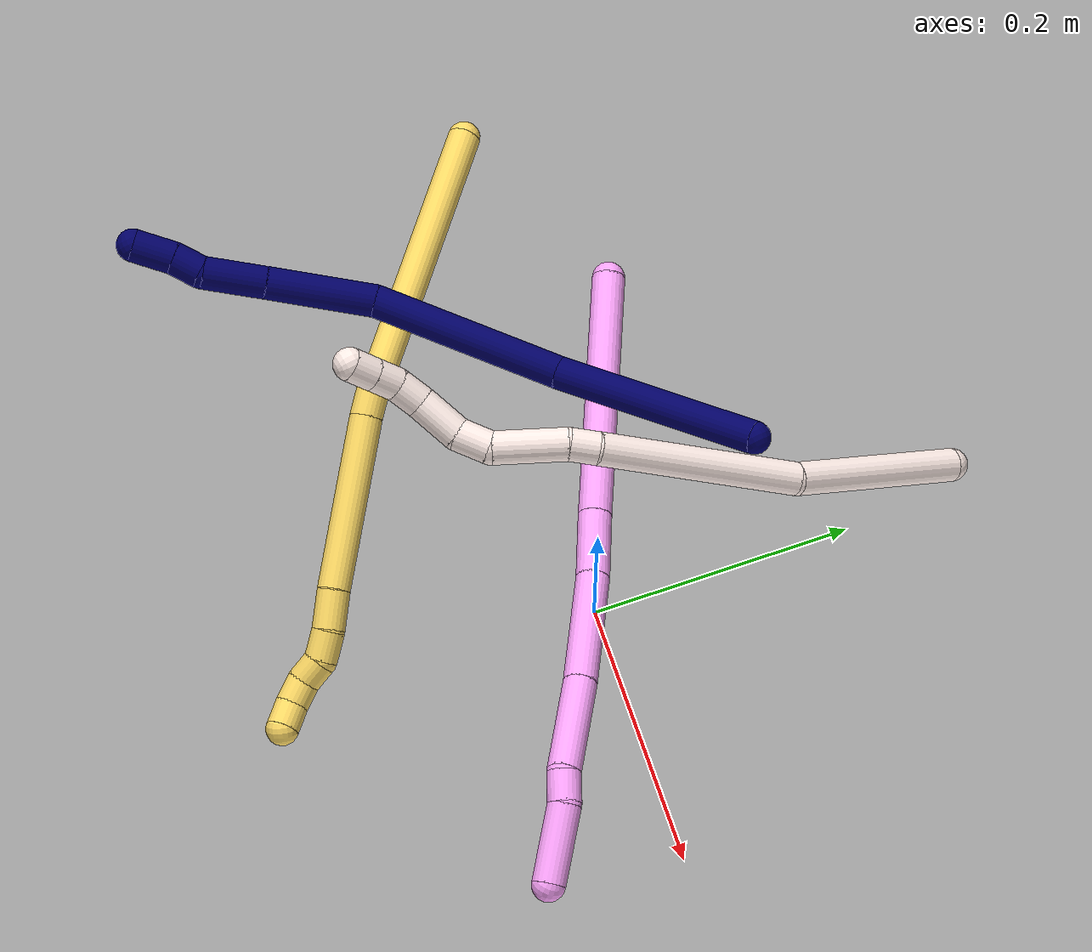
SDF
<sdf version="1.7">
 <world name="default">
  <model name="photoneo_s_sensor">
   <static>1</static>
   <pose>0 0 2 1.57079 1.57079 3.14159</pose>
   <link name="link">
    <inertial><mass>0.1</mass></inertial>
    <sensor name="sensor" type="depth">
     <update_rate>30</update_rate>
     <camera>
      <horizontal_fov>1.22</horizontal_fov>
      <image><width>1920</width><height>1200</height><format>B8G8R8</format></image>
      <clip><near>0.1</near><far>4</far></clip>
      <depth_camera><output>points</output></depth_camera>
     </camera>
     <plugin name="camera_plugin" filename="libgazebo_ros_depth_camera.so">
      <baseline>0.2</baseline>
      <alwaysOn>1</alwaysOn>
      <updateRate>0.0</updateRate>
      <cameraName>camera_ir</cameraName>
      <imageTopicName>/camera/color/image_raw</imageTopicName>
      <cameraInfoTopicName>/camera/color/camera_info</cameraInfoTopicName>
      <depthImageTopicName>/camera/depth/image_raw</depthImageTopicName>
      <depthImageCameraInfoTopicName>/camera/depth/camera_info</depthImageCameraInfoTopicName>
      <pointCloudTopicName>/camera/depth/points</pointCloudTopicName>
      <frameName>fr_optical</frameName>
      <pointCloudCutoff>0.1</pointCloudCutoff>
      <pointCloudCutoffMax>2.0</pointCloudCutoffMax>
      <distortionK1>0</distortionK1>
      <distortionK2>0</distortionK2>
      <distortionK3>0</distortionK3>
      <distortionT1>0</distortionT1>
      <distortionT2>0</distortionT2>
      <CxPrime>0</CxPrime>
      <Cx>0</Cx>
      <Cy>0</Cy>
      <focalLength>0</focalLength>
      <hackBaseline>0</hackBaseline>
     </plugin>
    </sensor>
   </link>
  </model>
  <model name="bin">
   <static>1</static>
   <link name="bottom">
    <collision name="collision-bottom">
     <pose>0 0 -0.01 0 -0 0</pose>
     <geometry><box><size>0.8 0.6 0.02</size></box></geometry>
     <surface>
      <friction><ode><mu>100</mu><mu2>100</mu2></ode></friction>
      <contact><collide_bitmask>65535</collide_bitmask></contact>
     </surface>
    </collision>
   </link>
   <link name="west_wall">
    <collision name="collision-west_wall">
     <pose>-0.41 0 0.1 0 -0 0</pose>
     <geometry><box><size>0.02 0.6 0.2</size></box></geometry>
     <surface>
      <friction><ode><mu>100</mu><mu2>100</mu2></ode></friction>
      <contact><collide_bitmask>65535</collide_bitmask></contact>
     </surface>
    </collision>
   </link>
   <link name="east_wall">
    <collision name="collision-east_wall">
     <pose>0.41 0 0.1 0 -0 0</pose>
     <geometry><box><size>0.02 0.6 0.2</size></box></geometry>
     <surface>
      <friction><ode><mu>100</mu><mu2>100</mu2></ode></friction>
      <contact><collide_bitmask>65535</collide_bitmask></contact>
     </surface>
    </collision>
   </link>
   <link name="south_wall">
    <collision name="collision-south_wall">
     <pose>0 -0.31 0.1 0 -0 0</pose>
     <geometry><box><size>0.8 0.02 0.2</size></box></geometry>
     <surface>
      <friction><ode><mu>100</mu><mu2>100</mu2></ode></friction>
      <contact><collide_bitmask>65535</collide_bitmask></contact>
     </surface>
    </collision>
   </link>
   <link name="north_wall">
    <collision name="collision-north_wall">
     <pose>0 0.31 0.1 0 -0 0</pose>
     <geometry><box><size>0.8 0.02 0.2</size></box></geometry>
     <surface>
      <friction><ode><mu>100</mu><mu2>100</mu2></ode></friction>
      <contact><collide_bitmask>65535</collide_bitmask></contact>
     </surface>
    </collision>
   </link>
  </model>
  <model name="4">
   <static>0</static>
   <link name="4">
    <collision name="collision-cylinder-e_1_1_4">
     <pose>0.085978 -0.012436 -0.051878 2.90631 1.01545 2.72297</pose>
     <geometry><cylinder><radius>0.0125</radius><length>0.202369</length></cylinder></geometry>
     <surface>
      <friction><ode><mu>1.16</mu><mu2>1.16</mu2><slip1>0</slip1><slip2>0</slip2></ode></friction>
      <contact><ode><kp>1e+06</kp><kd>1</kd><max_vel>0</max_vel><min_depth>0.001</min_depth></ode></contact>
     </surface>
    </collision>
    <visual name="visual-cylinder-e_1_1_4">
     <pose>0.085978 -0.012436 -0.051878 2.90631 1.01545 2.72297</pose>
     <geometry><cylinder><radius>0.0125</radius><length>0.202369</length></cylinder></geometry>
     <material><ambient>1 0.65098 0.996078 1</ambient></material>
    </visual>
    <collision name="collision-cylinder-e_2_4_5">
     <pose>0.194665 -0.027953 -0.116326 2.9013 1.05279 2.73189</pose>
     <geometry><cylinder><radius>0.0125</radius><length>0.052274</length></cylinder></geometry>
     <surface>
      <friction><ode><mu>1.16</mu><mu2>1.16</mu2><slip1>0</slip1><slip2>0</slip2></ode></friction>
      <contact><ode><kp>1e+06</kp><kd>1</kd><max_vel>0</max_vel><min_depth>0.001</min_depth></ode></contact>
     </surface>
    </collision>
    <visual name="visual-cylinder-e_2_4_5">
     <pose>0.194665 -0.027953 -0.116326 2.9013 1.05279 2.73189</pose>
     <geometry><cylinder><radius>0.0125</radius><length>0.052274</length></cylinder></geometry>
     <material><ambient>1 0.65098 0.996078 1</ambient></material>
    </visual>
    <collision name="collision-cylinder-e_3_5_6">
     <pose>0.255669 -0.040181 -0.149339 2.72081 1.0416 2.42883</pose>
     <geometry><cylinder><radius>0.0125</radius><length>0.088729</length></cylinder></geometry>
     <surface>
      <friction><ode><mu>1.16</mu><mu2>1.16</mu2><slip1>0</slip1><slip2>0</slip2></ode></friction>
      <contact><ode><kp>1e+06</kp><kd>1</kd><max_vel>0</max_vel><min_depth>0.001</min_depth></ode></contact>
     </surface>
    </collision>
    <visual name="visual-cylinder-e_3_5_6">
     <pose>0.255669 -0.040181 -0.149339 2.72081 1.0416 2.42883</pose>
     <geometry><cylinder><radius>0.0125</radius><length>0.088729</length></cylinder></geometry>
     <material><ambient>1 0.65098 0.996078 1</ambient></material>
    </visual>
    <collision name="collision-cylinder-e_4_6_7">
     <pose>0.325283 -0.058707 -0.187419 2.65293 1.00304 2.28805</pose>
     <geometry><cylinder><radius>0.0125</radius><length>0.074291</length></cylinder></geometry>
     <surface>
      <friction><ode><mu>1.16</mu><mu2>1.16</mu2><slip1>0</slip1><slip2>0</slip2></ode></friction>
      <contact><ode><kp>1e+06</kp><kd>1</kd><max_vel>0</max_vel><min_depth>0.001</min_depth></ode></contact>
     </surface>
    </collision>
    <visual name="visual-cylinder-e_4_6_7">
     <pose>0.325283 -0.058707 -0.187419 2.65293 1.00304 2.28805</pose>
     <geometry><cylinder><radius>0.0125</radius><length>0.074291</length></cylinder></geometry>
     <material><ambient>1 0.65098 0.996078 1</ambient></material>
    </visual>
    <collision name="collision-cylinder-e_5_7_8">
     <pose>0.366105 -0.06796 -0.212197 -3.12431 0.926381 -3.107</pose>
     <geometry><cylinder><radius>0.0125</radius><length>0.023778</length></cylinder></geometry>
     <surface>
      <friction><ode><mu>1.16</mu><mu2>1.16</mu2><slip1>0</slip1><slip2>0</slip2></ode></friction>
      <contact><ode><kp>1e+06</kp><kd>1</kd><max_vel>0</max_vel><min_depth>0.001</min_depth></ode></contact>
     </surface>
    </collision>
    <visual name="visual-cylinder-e_5_7_8">
     <pose>0.366105 -0.06796 -0.212197 -3.12431 0.926381 -3.107</pose>
     <geometry><cylinder><radius>0.0125</radius><length>0.023778</length></cylinder></geometry>
     <material><ambient>1 0.65098 0.996078 1</ambient></material>
    </visual>
    <collision name="collision-cylinder-e_6_8_2">
     <pose>0.394512 -0.071302 -0.241429 2.98598 0.701774 2.72187</pose>
     <geometry><cylinder><radius>0.0125</radius><length>0.058559</length></cylinder></geometry>
     <surface>
      <friction><ode><mu>1.16</mu><mu2>1.16</mu2><slip1>0</slip1><slip2>0</slip2></ode></friction>
      <contact><ode><kp>1e+06</kp><kd>1</kd><max_vel>0</max_vel><min_depth>0.001</min_depth></ode></contact>
     </surface>
    </collision>
    <visual name="visual-cylinder-e_6_8_2">
     <pose>0.394512 -0.071302 -0.241429 2.98598 0.701774 2.72187</pose>
     <geometry><cylinder><radius>0.0125</radius><length>0.058559</length></cylinder></geometry>
     <material><ambient>1 0.65098 0.996078 1</ambient></material>
    </visual>
    <collision name="collision-sphere-2">
     <pose>0.413414 -0.074768 -0.26352 0 -0 0</pose>
     <geometry><sphere><radius>0.0125</radius></sphere></geometry>
     <surface>
      <friction><ode><mu>1.16</mu><mu2>1.16</mu2><slip1>0</slip1><slip2>0</slip2></ode></friction>
      <contact><ode><kp>1e+06</kp><kd>1</kd><max_vel>0</max_vel><min_depth>0.001</min_depth></ode></contact>
     </surface>
    </collision>
    <visual name="visual-sphere-2">
     <pose>0.413414 -0.074768 -0.26352 0 -0 0</pose>
     <geometry><sphere><radius>0.0125</radius></sphere></geometry>
     <material><ambient>1 0.65098 0.996078 1</ambient></material>
    </visual>
    <collision name="collision-sphere-4">
     <pose>0.171957 -0.024873 -0.103757 0 -0 0</pose>
     <geometry><sphere><radius>0.0125</radius></sphere></geometry>
     <surface>
      <friction><ode><mu>1.16</mu><mu2>1.16</mu2><slip1>0</slip1><slip2>0</slip2></ode></friction>
      <contact><ode><kp>1e+06</kp><kd>1</kd><max_vel>0</max_vel><min_depth>0.001</min_depth></ode></contact>
     </surface>
    </collision>
    <visual name="visual-sphere-4">
     <pose>0.171957 -0.024873 -0.103757 0 -0 0</pose>
     <geometry><sphere><radius>0.0125</radius></sphere></geometry>
     <material><ambient>1 0.65098 0.996078 1</ambient></material>
    </visual>
    <collision name="collision-sphere-1">
     <geometry><sphere><radius>0.0125</radius></sphere></geometry>
     <surface>
      <friction><ode><mu>1.16</mu><mu2>1.16</mu2><slip1>0</slip1><slip2>0</slip2></ode></friction>
      <contact><ode><kp>1e+06</kp><kd>1</kd><max_vel>0</max_vel><min_depth>0.001</min_depth></ode></contact>
     </surface>
    </collision>
    <visual name="visual-sphere-1">
     <geometry><sphere><radius>0.0125</radius></sphere></geometry>
     <material><ambient>1 0.65098 0.996078 1</ambient></material>
    </visual>
    <collision name="collision-sphere-8">
     <pose>0.37561 -0.067837 -0.219338 0 -0 0</pose>
     <geometry><sphere><radius>0.0125</radius></sphere></geometry>
     <surface>
      <friction><ode><mu>1.16</mu><mu2>1.16</mu2><slip1>0</slip1><slip2>0</slip2></ode></friction>
      <contact><ode><kp>1e+06</kp><kd>1</kd><max_vel>0</max_vel><min_depth>0.001</min_depth></ode></contact>
     </surface>
    </collision>
    <visual name="visual-sphere-8">
     <pose>0.37561 -0.067837 -0.219338 0 -0 0</pose>
     <geometry><sphere><radius>0.0125</radius></sphere></geometry>
     <material><ambient>1 0.65098 0.996078 1</ambient></material>
    </visual>
    <collision name="collision-sphere-5">
     <pose>0.217373 -0.031033 -0.128896 0 -0 0</pose>
     <geometry><sphere><radius>0.0125</radius></sphere></geometry>
     <surface>
      <friction><ode><mu>1.16</mu><mu2>1.16</mu2><slip1>0</slip1><slip2>0</slip2></ode></friction>
      <contact><ode><kp>1e+06</kp><kd>1</kd><max_vel>0</max_vel><min_depth>0.001</min_depth></ode></contact>
     </surface>
    </collision>
    <visual name="visual-sphere-5">
     <pose>0.217373 -0.031033 -0.128896 0 -0 0</pose>
     <geometry><sphere><radius>0.0125</radius></sphere></geometry>
     <material><ambient>1 0.65098 0.996078 1</ambient></material>
    </visual>
    <collision name="collision-sphere-6">
     <pose>0.293965 -0.04933 -0.169783 0 -0 0</pose>
     <geometry><sphere><radius>0.0125</radius></sphere></geometry>
     <surface>
      <friction><ode><mu>1.16</mu><mu2>1.16</mu2><slip1>0</slip1><slip2>0</slip2></ode></friction>
      <contact><ode><kp>1e+06</kp><kd>1</kd><max_vel>0</max_vel><min_depth>0.001</min_depth></ode></contact>
     </surface>
    </collision>
    <visual name="visual-sphere-6">
     <pose>0.293965 -0.04933 -0.169783 0 -0 0</pose>
     <geometry><sphere><radius>0.0125</radius></sphere></geometry>
     <material><ambient>1 0.65098 0.996078 1</ambient></material>
    </visual>
    <collision name="collision-sphere-7">
     <pose>0.3566 -0.068084 -0.205056 0 -0 0</pose>
     <geometry><sphere><radius>0.0125</radius></sphere></geometry>
     <surface>
      <friction><ode><mu>1.16</mu><mu2>1.16</mu2><slip1>0</slip1><slip2>0</slip2></ode></friction>
      <contact><ode><kp>1e+06</kp><kd>1</kd><max_vel>0</max_vel><min_depth>0.001</min_depth></ode></contact>
     </surface>
    </collision>
    <visual name="visual-sphere-7">
     <pose>0.3566 -0.068084 -0.205056 0 -0 0</pose>
     <geometry><sphere><radius>0.0125</radius></sphere></geometry>
     <material><ambient>1 0.65098 0.996078 1</ambient></material>
    </visual>
    <inertial>
     <pose>0.212467 -0.035392 -0.125874 0 -0 0</pose>
     <mass>0.5</mass>
     <inertia>
      <ixx>-0.000168</ixx>
      <ixy>0</ixy>
      <ixz>0</ixz>
      <iyy>0.000988</iyy>
      <iyz>0</iyz>
      <izz>-0.000613</izz>
     </inertia>
    </inertial>
   </link>
   <pose>-0.236003 0.092078 0.035399 -0.571908 -0.60235 0.010251</pose>
  </model>
  <model name="5">
   <static>0</static>
   <link name="5">
    <collision name="collision-cylinder-e_1_1_4">
     <pose>0.081891 -0.02922 0.077033 0.362547 0.782372 0.150902</pose>
     <geometry><cylinder><radius>0.0125</radius><length>0.232327</length></cylinder></geometry>
     <surface>
      <friction><ode><mu>1.16</mu><mu2>1.16</mu2><slip1>0</slip1><slip2>0</slip2></ode></friction>
      <contact><ode><kp>1e+06</kp><kd>1</kd><max_vel>0</max_vel><min_depth>0.001</min_depth></ode></contact>
     </surface>
    </collision>
    <visual name="visual-cylinder-e_1_1_4">
     <pose>0.081891 -0.02922 0.077033 0.362547 0.782372 0.150902</pose>
     <geometry><cylinder><radius>0.0125</radius><length>0.232327</length></cylinder></geometry>
     <material><ambient>1 0.858824 0.4 1</ambient></material>
    </visual>
    <collision name="collision-cylinder-e_2_4_5">
     <pose>0.169301 -0.059202 0.163327 0.08216 0.535906 0.022569</pose>
     <geometry><cylinder><radius>0.0125</radius><length>0.021616</length></cylinder></geometry>
     <surface>
      <friction><ode><mu>1.16</mu><mu2>1.16</mu2><slip1>0</slip1><slip2>0</slip2></ode></friction>
      <contact><ode><kp>1e+06</kp><kd>1</kd><max_vel>0</max_vel><min_depth>0.001</min_depth></ode></contact>
     </surface>
    </collision>
    <visual name="visual-cylinder-e_2_4_5">
     <pose>0.169301 -0.059202 0.163327 0.08216 0.535906 0.022569</pose>
     <geometry><cylinder><radius>0.0125</radius><length>0.021616</length></cylinder></geometry>
     <material><ambient>1 0.858824 0.4 1</ambient></material>
    </visual>
    <collision name="collision-cylinder-e_3_5_6">
     <pose>0.206637 -0.068947 0.230063 0.155038 0.500489 0.039703</pose>
     <geometry><cylinder><radius>0.0125</radius><length>0.132609</length></cylinder></geometry>
     <surface>
      <friction><ode><mu>1.16</mu><mu2>1.16</mu2><slip1>0</slip1><slip2>0</slip2></ode></friction>
      <contact><ode><kp>1e+06</kp><kd>1</kd><max_vel>0</max_vel><min_depth>0.001</min_depth></ode></contact>
     </surface>
    </collision>
    <visual name="visual-cylinder-e_3_5_6">
     <pose>0.206637 -0.068947 0.230063 0.155038 0.500489 0.039703</pose>
     <geometry><cylinder><radius>0.0125</radius><length>0.132609</length></cylinder></geometry>
     <material><ambient>1 0.858824 0.4 1</ambient></material>
    </visual>
    <collision name="collision-cylinder-e_4_6_7">
     <pose>0.244516 -0.079683 0.301158 0.128021 0.415767 0.027039</pose>
     <geometry><cylinder><radius>0.0125</radius><length>0.030022</length></cylinder></geometry>
     <surface>
      <friction><ode><mu>1.16</mu><mu2>1.16</mu2><slip1>0</slip1><slip2>0</slip2></ode></friction>
      <contact><ode><kp>1e+06</kp><kd>1</kd><max_vel>0</max_vel><min_depth>0.001</min_depth></ode></contact>
     </surface>
    </collision>
    <visual name="visual-cylinder-e_4_6_7">
     <pose>0.244516 -0.079683 0.301158 0.128021 0.415767 0.027039</pose>
     <geometry><cylinder><radius>0.0125</radius><length>0.030022</length></cylinder></geometry>
     <material><ambient>1 0.858824 0.4 1</ambient></material>
    </visual>
    <collision name="collision-cylinder-e_5_7_8">
     <pose>0.2554 -0.080835 0.325288 -0.05723 0.429409 -0.012483</pose>
     <geometry><cylinder><radius>0.0125</radius><length>0.023157</length></cylinder></geometry>
     <surface>
      <friction><ode><mu>1.16</mu><mu2>1.16</mu2><slip1>0</slip1><slip2>0</slip2></ode></friction>
      <contact><ode><kp>1e+06</kp><kd>1</kd><max_vel>0</max_vel><min_depth>0.001</min_depth></ode></contact>
     </surface>
    </collision>
    <visual name="visual-cylinder-e_5_7_8">
     <pose>0.2554 -0.080835 0.325288 -0.05723 0.429409 -0.012483</pose>
     <geometry><cylinder><radius>0.0125</radius><length>0.023157</length></cylinder></geometry>
     <material><ambient>1 0.858824 0.4 1</ambient></material>
    </visual>
    <collision name="collision-cylinder-e_6_8_9">
     <pose>0.265722 -0.075668 0.342936 -0.568968 0.575935 -0.172796</pose>
     <geometry><cylinder><radius>0.0125</radius><length>0.020205</length></cylinder></geometry>
     <surface>
      <friction><ode><mu>1.16</mu><mu2>1.16</mu2><slip1>0</slip1><slip2>0</slip2></ode></friction>
      <contact><ode><kp>1e+06</kp><kd>1</kd><max_vel>0</max_vel><min_depth>0.001</min_depth></ode></contact>
     </surface>
    </collision>
    <visual name="visual-cylinder-e_6_8_9">
     <pose>0.265722 -0.075668 0.342936 -0.568968 0.575935 -0.172796</pose>
     <geometry><cylinder><radius>0.0125</radius><length>0.020205</length></cylinder></geometry>
     <material><ambient>1 0.858824 0.4 1</ambient></material>
    </visual>
    <collision name="collision-cylinder-e_7_9_10">
     <pose>0.277645 -0.07043 0.357739 -0.087562 0.695411 -0.031753</pose>
     <geometry><cylinder><radius>0.0125</radius><length>0.020043</length></cylinder></geometry>
     <surface>
      <friction><ode><mu>1.16</mu><mu2>1.16</mu2><slip1>0</slip1><slip2>0</slip2></ode></friction>
      <contact><ode><kp>1e+06</kp><kd>1</kd><max_vel>0</max_vel><min_depth>0.001</min_depth></ode></contact>
     </surface>
    </collision>
    <visual name="visual-cylinder-e_7_9_10">
     <pose>0.277645 -0.07043 0.357739 -0.087562 0.695411 -0.031753</pose>
     <geometry><cylinder><radius>0.0125</radius><length>0.020043</length></cylinder></geometry>
     <material><ambient>1 0.858824 0.4 1</ambient></material>
    </visual>
    <collision name="collision-cylinder-e_8_10_2">
     <pose>0.291005 -0.071459 0.372414 0.238168 0.766027 0.096342</pose>
     <geometry><cylinder><radius>0.0125</radius><length>0.02002</length></cylinder></geometry>
     <surface>
      <friction><ode><mu>1.16</mu><mu2>1.16</mu2><slip1>0</slip1><slip2>0</slip2></ode></friction>
      <contact><ode><kp>1e+06</kp><kd>1</kd><max_vel>0</max_vel><min_depth>0.001</min_depth></ode></contact>
     </surface>
    </collision>
    <visual name="visual-cylinder-e_8_10_2">
     <pose>0.291005 -0.071459 0.372414 0.238168 0.766027 0.096342</pose>
     <geometry><cylinder><radius>0.0125</radius><length>0.02002</length></cylinder></geometry>
     <material><ambient>1 0.858824 0.4 1</ambient></material>
    </visual>
    <collision name="collision-sphere-2">
     <pose>0.297945 -0.073161 0.379424 0 -0 0</pose>
     <geometry><sphere><radius>0.0125</radius></sphere></geometry>
     <surface>
      <friction><ode><mu>1.16</mu><mu2>1.16</mu2><slip1>0</slip1><slip2>0</slip2></ode></friction>
      <contact><ode><kp>1e+06</kp><kd>1</kd><max_vel>0</max_vel><min_depth>0.001</min_depth></ode></contact>
     </surface>
    </collision>
    <visual name="visual-sphere-2">
     <pose>0.297945 -0.073161 0.379424 0 -0 0</pose>
     <geometry><sphere><radius>0.0125</radius></sphere></geometry>
     <material><ambient>1 0.858824 0.4 1</ambient></material>
    </visual>
    <collision name="collision-sphere-10">
     <pose>0.284066 -0.069757 0.365404 0 -0 0</pose>
     <geometry><sphere><radius>0.0125</radius></sphere></geometry>
     <surface>
      <friction><ode><mu>1.16</mu><mu2>1.16</mu2><slip1>0</slip1><slip2>0</slip2></ode></friction>
      <contact><ode><kp>1e+06</kp><kd>1</kd><max_vel>0</max_vel><min_depth>0.001</min_depth></ode></contact>
     </surface>
    </collision>
    <visual name="visual-sphere-10">
     <pose>0.284066 -0.069757 0.365404 0 -0 0</pose>
     <geometry><sphere><radius>0.0125</radius></sphere></geometry>
     <material><ambient>1 0.858824 0.4 1</ambient></material>
    </visual>
    <collision name="collision-sphere-9">
     <pose>0.271224 -0.071103 0.350074 0 -0 0</pose>
     <geometry><sphere><radius>0.0125</radius></sphere></geometry>
     <surface>
      <friction><ode><mu>1.16</mu><mu2>1.16</mu2><slip1>0</slip1><slip2>0</slip2></ode></friction>
      <contact><ode><kp>1e+06</kp><kd>1</kd><max_vel>0</max_vel><min_depth>0.001</min_depth></ode></contact>
     </surface>
    </collision>
    <visual name="visual-sphere-9">
     <pose>0.271224 -0.071103 0.350074 0 -0 0</pose>
     <geometry><sphere><radius>0.0125</radius></sphere></geometry>
     <material><ambient>1 0.858824 0.4 1</ambient></material>
    </visual>
    <collision name="collision-sphere-4">
     <pose>0.163782 -0.058439 0.154066 0 -0 0</pose>
     <geometry><sphere><radius>0.0125</radius></sphere></geometry>
     <surface>
      <friction><ode><mu>1.16</mu><mu2>1.16</mu2><slip1>0</slip1><slip2>0</slip2></ode></friction>
      <contact><ode><kp>1e+06</kp><kd>1</kd><max_vel>0</max_vel><min_depth>0.001</min_depth></ode></contact>
     </surface>
    </collision>
    <visual name="visual-sphere-4">
     <pose>0.163782 -0.058439 0.154066 0 -0 0</pose>
     <geometry><sphere><radius>0.0125</radius></sphere></geometry>
     <material><ambient>1 0.858824 0.4 1</ambient></material>
    </visual>
    <collision name="collision-sphere-1">
     <geometry><sphere><radius>0.0125</radius></sphere></geometry>
     <surface>
      <friction><ode><mu>1.16</mu><mu2>1.16</mu2><slip1>0</slip1><slip2>0</slip2></ode></friction>
      <contact><ode><kp>1e+06</kp><kd>1</kd><max_vel>0</max_vel><min_depth>0.001</min_depth></ode></contact>
     </surface>
    </collision>
    <visual name="visual-sphere-1">
     <geometry><sphere><radius>0.0125</radius></sphere></geometry>
     <material><ambient>1 0.858824 0.4 1</ambient></material>
    </visual>
    <collision name="collision-sphere-8">
     <pose>0.26022 -0.080232 0.335798 0 -0 0</pose>
     <geometry><sphere><radius>0.0125</radius></sphere></geometry>
     <surface>
      <friction><ode><mu>1.16</mu><mu2>1.16</mu2><slip1>0</slip1><slip2>0</slip2></ode></friction>
      <contact><ode><kp>1e+06</kp><kd>1</kd><max_vel>0</max_vel><min_depth>0.001</min_depth></ode></contact>
     </surface>
    </collision>
    <visual name="visual-sphere-8">
     <pose>0.26022 -0.080232 0.335798 0 -0 0</pose>
     <geometry><sphere><radius>0.0125</radius></sphere></geometry>
     <material><ambient>1 0.858824 0.4 1</ambient></material>
    </visual>
    <collision name="collision-sphere-5">
     <pose>0.17482 -0.059965 0.172589 0 -0 0</pose>
     <geometry><sphere><radius>0.0125</radius></sphere></geometry>
     <surface>
      <friction><ode><mu>1.16</mu><mu2>1.16</mu2><slip1>0</slip1><slip2>0</slip2></ode></friction>
      <contact><ode><kp>1e+06</kp><kd>1</kd><max_vel>0</max_vel><min_depth>0.001</min_depth></ode></contact>
     </surface>
    </collision>
    <visual name="visual-sphere-5">
     <pose>0.17482 -0.059965 0.172589 0 -0 0</pose>
     <geometry><sphere><radius>0.0125</radius></sphere></geometry>
     <material><ambient>1 0.858824 0.4 1</ambient></material>
    </visual>
    <collision name="collision-sphere-6">
     <pose>0.238453 -0.07793 0.287538 0 -0 0</pose>
     <geometry><sphere><radius>0.0125</radius></sphere></geometry>
     <surface>
      <friction><ode><mu>1.16</mu><mu2>1.16</mu2><slip1>0</slip1><slip2>0</slip2></ode></friction>
      <contact><ode><kp>1e+06</kp><kd>1</kd><max_vel>0</max_vel><min_depth>0.001</min_depth></ode></contact>
     </surface>
    </collision>
    <visual name="visual-sphere-6">
     <pose>0.238453 -0.07793 0.287538 0 -0 0</pose>
     <geometry><sphere><radius>0.0125</radius></sphere></geometry>
     <material><ambient>1 0.858824 0.4 1</ambient></material>
    </visual>
    <collision name="collision-sphere-7">
     <pose>0.250579 -0.081437 0.314778 0 -0 0</pose>
     <geometry><sphere><radius>0.0125</radius></sphere></geometry>
     <surface>
      <friction><ode><mu>1.16</mu><mu2>1.16</mu2><slip1>0</slip1><slip2>0</slip2></ode></friction>
      <contact><ode><kp>1e+06</kp><kd>1</kd><max_vel>0</max_vel><min_depth>0.001</min_depth></ode></contact>
     </surface>
    </collision>
    <visual name="visual-sphere-7">
     <pose>0.250579 -0.081437 0.314778 0 -0 0</pose>
     <geometry><sphere><radius>0.0125</radius></sphere></geometry>
     <material><ambient>1 0.858824 0.4 1</ambient></material>
    </visual>
    <inertial>
     <pose>0.160204 -0.051693 0.18013 0 -0 0</pose>
     <mass>0.5</mass>
     <inertia>
      <ixx>0.001066</ixx>
      <ixy>0</ixy>
      <ixz>0</ixz>
      <iyy>0.001336</iyy>
      <iyz>0</iyz>
      <izz>-0.000523</izz>
     </inertia>
    </inertial>
   </link>
   <pose>-0.388504 0.027444 0.01152 -2.24601 -0.549383 -1.38134</pose>
  </model>
  <model name="7">
   <static>0</static>
   <link name="7">
    <collision name="collision-cylinder-e_1_1_4">
     <pose>-0.017518 -0.05751 -0.05497 2.33362 -0.216745 -0.49842</pose>
     <geometry><cylinder><radius>0.0125</radius><length>0.162923</length></cylinder></geometry>
     <surface>
      <friction><ode><mu>1.16</mu><mu2>1.16</mu2><slip1>0</slip1><slip2>0</slip2></ode></friction>
      <contact><ode><kp>1e+06</kp><kd>1</kd><max_vel>0</max_vel><min_depth>0.001</min_depth></ode></contact>
     </surface>
    </collision>
    <visual name="visual-cylinder-e_1_1_4">
     <pose>-0.017518 -0.05751 -0.05497 2.33362 -0.216745 -0.49842</pose>
     <geometry><cylinder><radius>0.0125</radius><length>0.162923</length></cylinder></geometry>
     <material><ambient>0.003922 0 0.403922 1</ambient></material>
    </visual>
    <collision name="collision-cylinder-e_2_4_5">
     <pose>-0.064881 -0.155258 -0.165238 2.51253 -0.411482 -1.14072</pose>
     <geometry><cylinder><radius>0.0125</radius><length>0.149233</length></cylinder></geometry>
     <surface>
      <friction><ode><mu>1.16</mu><mu2>1.16</mu2><slip1>0</slip1><slip2>0</slip2></ode></friction>
      <contact><ode><kp>1e+06</kp><kd>1</kd><max_vel>0</max_vel><min_depth>0.001</min_depth></ode></contact>
     </surface>
    </collision>
    <visual name="visual-cylinder-e_2_4_5">
     <pose>-0.064881 -0.155258 -0.165238 2.51253 -0.411482 -1.14072</pose>
     <geometry><cylinder><radius>0.0125</radius><length>0.149233</length></cylinder></geometry>
     <material><ambient>0.003922 0 0.403922 1</ambient></material>
    </visual>
    <collision name="collision-cylinder-e_3_5_6">
     <pose>-0.122044 -0.21597 -0.24467 2.43811 -0.712096 -1.58405</pose>
     <geometry><cylinder><radius>0.0125</radius><length>0.083618</length></cylinder></geometry>
     <surface>
      <friction><ode><mu>1.16</mu><mu2>1.16</mu2><slip1>0</slip1><slip2>0</slip2></ode></friction>
      <contact><ode><kp>1e+06</kp><kd>1</kd><max_vel>0</max_vel><min_depth>0.001</min_depth></ode></contact>
     </surface>
    </collision>
    <visual name="visual-cylinder-e_3_5_6">
     <pose>-0.122044 -0.21597 -0.24467 2.43811 -0.712096 -1.58405</pose>
     <geometry><cylinder><radius>0.0125</radius><length>0.083618</length></cylinder></geometry>
     <material><ambient>0.003922 0 0.403922 1</ambient></material>
    </visual>
    <collision name="collision-cylinder-e_4_6_7">
     <pose>-0.166771 -0.24681 -0.282463 2.49227 -0.79297 -1.78732</pose>
     <geometry><cylinder><radius>0.0125</radius><length>0.048869</length></cylinder></geometry>
     <surface>
      <friction><ode><mu>1.16</mu><mu2>1.16</mu2><slip1>0</slip1><slip2>0</slip2></ode></friction>
      <contact><ode><kp>1e+06</kp><kd>1</kd><max_vel>0</max_vel><min_depth>0.001</min_depth></ode></contact>
     </surface>
    </collision>
    <visual name="visual-cylinder-e_4_6_7">
     <pose>-0.166771 -0.24681 -0.282463 2.49227 -0.79297 -1.78732</pose>
     <geometry><cylinder><radius>0.0125</radius><length>0.048869</length></cylinder></geometry>
     <material><ambient>0.003922 0 0.403922 1</ambient></material>
    </visual>
    <collision name="collision-cylinder-e_5_7_8">
     <pose>-0.189054 -0.261988 -0.305525 2.66883 -0.432354 -1.47846</pose>
     <geometry><cylinder><radius>0.0125</radius><length>0.02327</length></cylinder></geometry>
     <surface>
      <friction><ode><mu>1.16</mu><mu2>1.16</mu2><slip1>0</slip1><slip2>0</slip2></ode></friction>
      <contact><ode><kp>1e+06</kp><kd>1</kd><max_vel>0</max_vel><min_depth>0.001</min_depth></ode></contact>
     </surface>
    </collision>
    <visual name="visual-cylinder-e_5_7_8">
     <pose>-0.189054 -0.261988 -0.305525 2.66883 -0.432354 -1.47846</pose>
     <geometry><cylinder><radius>0.0125</radius><length>0.02327</length></cylinder></geometry>
     <material><ambient>0.003922 0 0.403922 1</ambient></material>
    </visual>
    <collision name="collision-cylinder-e_6_8_2">
     <pose>-0.203542 -0.273514 -0.325881 2.59149 -0.64244 -1.7348</pose>
     <geometry><cylinder><radius>0.0125</radius><length>0.032088</length></cylinder></geometry>
     <surface>
      <friction><ode><mu>1.16</mu><mu2>1.16</mu2><slip1>0</slip1><slip2>0</slip2></ode></friction>
      <contact><ode><kp>1e+06</kp><kd>1</kd><max_vel>0</max_vel><min_depth>0.001</min_depth></ode></contact>
     </surface>
    </collision>
    <visual name="visual-cylinder-e_6_8_2">
     <pose>-0.203542 -0.273514 -0.325881 2.59149 -0.64244 -1.7348</pose>
     <geometry><cylinder><radius>0.0125</radius><length>0.032088</length></cylinder></geometry>
     <material><ambient>0.003922 0 0.403922 1</ambient></material>
    </visual>
    <collision name="collision-sphere-2">
     <pose>-0.213155 -0.280229 -0.336831 0 -0 0</pose>
     <geometry><sphere><radius>0.0125</radius></sphere></geometry>
     <surface>
      <friction><ode><mu>1.16</mu><mu2>1.16</mu2><slip1>0</slip1><slip2>0</slip2></ode></friction>
      <contact><ode><kp>1e+06</kp><kd>1</kd><max_vel>0</max_vel><min_depth>0.001</min_depth></ode></contact>
     </surface>
    </collision>
    <visual name="visual-sphere-2">
     <pose>-0.213155 -0.280229 -0.336831 0 -0 0</pose>
     <geometry><sphere><radius>0.0125</radius></sphere></geometry>
     <material><ambient>0.003922 0 0.403922 1</ambient></material>
    </visual>
    <collision name="collision-sphere-4">
     <pose>-0.035037 -0.115019 -0.10994 0 -0 0</pose>
     <geometry><sphere><radius>0.0125</radius></sphere></geometry>
     <surface>
      <friction><ode><mu>1.16</mu><mu2>1.16</mu2><slip1>0</slip1><slip2>0</slip2></ode></friction>
      <contact><ode><kp>1e+06</kp><kd>1</kd><max_vel>0</max_vel><min_depth>0.001</min_depth></ode></contact>
     </surface>
    </collision>
    <visual name="visual-sphere-4">
     <pose>-0.035037 -0.115019 -0.10994 0 -0 0</pose>
     <geometry><sphere><radius>0.0125</radius></sphere></geometry>
     <material><ambient>0.003922 0 0.403922 1</ambient></material>
    </visual>
    <collision name="collision-sphere-1">
     <geometry><sphere><radius>0.0125</radius></sphere></geometry>
     <surface>
      <friction><ode><mu>1.16</mu><mu2>1.16</mu2><slip1>0</slip1><slip2>0</slip2></ode></friction>
      <contact><ode><kp>1e+06</kp><kd>1</kd><max_vel>0</max_vel><min_depth>0.001</min_depth></ode></contact>
     </surface>
    </collision>
    <visual name="visual-sphere-1">
     <geometry><sphere><radius>0.0125</radius></sphere></geometry>
     <material><ambient>0.003922 0 0.403922 1</ambient></material>
    </visual>
    <collision name="collision-sphere-8">
     <pose>-0.193929 -0.266798 -0.31493 0 -0 0</pose>
     <geometry><sphere><radius>0.0125</radius></sphere></geometry>
     <surface>
      <friction><ode><mu>1.16</mu><mu2>1.16</mu2><slip1>0</slip1><slip2>0</slip2></ode></friction>
      <contact><ode><kp>1e+06</kp><kd>1</kd><max_vel>0</max_vel><min_depth>0.001</min_depth></ode></contact>
     </surface>
    </collision>
    <visual name="visual-sphere-8">
     <pose>-0.193929 -0.266798 -0.31493 0 -0 0</pose>
     <geometry><sphere><radius>0.0125</radius></sphere></geometry>
     <material><ambient>0.003922 0 0.403922 1</ambient></material>
    </visual>
    <collision name="collision-sphere-5">
     <pose>-0.094725 -0.195497 -0.220535 0 -0 0</pose>
     <geometry><sphere><radius>0.0125</radius></sphere></geometry>
     <surface>
      <friction><ode><mu>1.16</mu><mu2>1.16</mu2><slip1>0</slip1><slip2>0</slip2></ode></friction>
      <contact><ode><kp>1e+06</kp><kd>1</kd><max_vel>0</max_vel><min_depth>0.001</min_depth></ode></contact>
     </surface>
    </collision>
    <visual name="visual-sphere-5">
     <pose>-0.094725 -0.195497 -0.220535 0 -0 0</pose>
     <geometry><sphere><radius>0.0125</radius></sphere></geometry>
     <material><ambient>0.003922 0 0.403922 1</ambient></material>
    </visual>
    <collision name="collision-sphere-6">
     <pose>-0.149363 -0.236443 -0.268806 0 -0 0</pose>
     <geometry><sphere><radius>0.0125</radius></sphere></geometry>
     <surface>
      <friction><ode><mu>1.16</mu><mu2>1.16</mu2><slip1>0</slip1><slip2>0</slip2></ode></friction>
      <contact><ode><kp>1e+06</kp><kd>1</kd><max_vel>0</max_vel><min_depth>0.001</min_depth></ode></contact>
     </surface>
    </collision>
    <visual name="visual-sphere-6">
     <pose>-0.149363 -0.236443 -0.268806 0 -0 0</pose>
     <geometry><sphere><radius>0.0125</radius></sphere></geometry>
     <material><ambient>0.003922 0 0.403922 1</ambient></material>
    </visual>
    <collision name="collision-sphere-7">
     <pose>-0.184179 -0.257178 -0.296119 0 -0 0</pose>
     <geometry><sphere><radius>0.0125</radius></sphere></geometry>
     <surface>
      <friction><ode><mu>1.16</mu><mu2>1.16</mu2><slip1>0</slip1><slip2>0</slip2></ode></friction>
      <contact><ode><kp>1e+06</kp><kd>1</kd><max_vel>0</max_vel><min_depth>0.001</min_depth></ode></contact>
     </surface>
    </collision>
    <visual name="visual-sphere-7">
     <pose>-0.184179 -0.257178 -0.296119 0 -0 0</pose>
     <geometry><sphere><radius>0.0125</radius></sphere></geometry>
     <material><ambient>0.003922 0 0.403922 1</ambient></material>
    </visual>
    <inertial>
     <pose>-0.083644 -0.155065 -0.170887 0 -0 0</pose>
     <mass>0.5</mass>
     <inertia>
      <ixx>-5.6e-05</ixx>
      <ixy>0</ixy>
      <ixz>0</ixz>
      <iyy>-0.00068</iyy>
      <iyz>0</iyz>
      <izz>0.000655</izz>
     </inertia>
    </inertial>
   </link>
   <pose>-0.058601 0.142602 0.113576 1.84721 0.632159 1.88033</pose>
  </model>
  <model name="11">
   <static>0</static>
   <link name="11">
    <collision name="collision-cylinder-e_1_1_4">
     <pose>0.009844 -0.03346 -0.061191 2.6412 0.140229 0.536387</pose>
     <geometry><cylinder><radius>0.0125</radius><length>0.140867</length></cylinder></geometry>
     <surface>
      <friction><ode><mu>1.16</mu><mu2>1.16</mu2><slip1>0</slip1><slip2>0</slip2></ode></friction>
      <contact><ode><kp>1e+06</kp><kd>1</kd><max_vel>0</max_vel><min_depth>0.001</min_depth></ode></contact>
     </surface>
    </collision>
    <visual name="visual-cylinder-e_1_1_4">
     <pose>0.009844 -0.03346 -0.061191 2.6412 0.140229 0.536387</pose>
     <geometry><cylinder><radius>0.0125</radius><length>0.140867</length></cylinder></geometry>
     <material><ambient>1 0.933333 0.909804 1</ambient></material>
    </visual>
    <collision name="collision-cylinder-e_2_4_5">
     <pose>0.009623 -0.112215 -0.185886 2.52203 -0.128334 -0.396216</pose>
     <geometry><cylinder><radius>0.0125</radius><length>0.157296</length></cylinder></geometry>
     <surface>
      <friction><ode><mu>1.16</mu><mu2>1.16</mu2><slip1>0</slip1><slip2>0</slip2></ode></friction>
      <contact><ode><kp>1e+06</kp><kd>1</kd><max_vel>0</max_vel><min_depth>0.001</min_depth></ode></contact>
     </surface>
    </collision>
    <visual name="visual-cylinder-e_2_4_5">
     <pose>0.009623 -0.112215 -0.185886 2.52203 -0.128334 -0.396216</pose>
     <geometry><cylinder><radius>0.0125</radius><length>0.157296</length></cylinder></geometry>
     <material><ambient>1 0.933333 0.909804 1</ambient></material>
    </visual>
    <collision name="collision-cylinder-e_3_5_6">
     <pose>-0.003751 -0.162931 -0.258252 2.59249 -0.308324 -1.0083</pose>
     <geometry><cylinder><radius>0.0125</radius><length>0.021809</length></cylinder></geometry>
     <surface>
      <friction><ode><mu>1.16</mu><mu2>1.16</mu2><slip1>0</slip1><slip2>0</slip2></ode></friction>
      <contact><ode><kp>1e+06</kp><kd>1</kd><max_vel>0</max_vel><min_depth>0.001</min_depth></ode></contact>
     </surface>
    </collision>
    <visual name="visual-cylinder-e_3_5_6">
     <pose>-0.003751 -0.162931 -0.258252 2.59249 -0.308324 -1.0083</pose>
     <geometry><cylinder><radius>0.0125</radius><length>0.021809</length></cylinder></geometry>
     <material><ambient>1 0.933333 0.909804 1</ambient></material>
    </visual>
    <collision name="collision-cylinder-e_4_6_7">
     <pose>-0.01579 -0.17677 -0.292458 2.82097 -0.315966 -1.55593</pose>
     <geometry><cylinder><radius>0.0125</radius><length>0.056191</length></cylinder></geometry>
     <surface>
      <friction><ode><mu>1.16</mu><mu2>1.16</mu2><slip1>0</slip1><slip2>0</slip2></ode></friction>
      <contact><ode><kp>1e+06</kp><kd>1</kd><max_vel>0</max_vel><min_depth>0.001</min_depth></ode></contact>
     </surface>
    </collision>
    <visual name="visual-cylinder-e_4_6_7">
     <pose>-0.01579 -0.17677 -0.292458 2.82097 -0.315966 -1.55593</pose>
     <geometry><cylinder><radius>0.0125</radius><length>0.056191</length></cylinder></geometry>
     <material><ambient>1 0.933333 0.909804 1</ambient></material>
    </visual>
    <collision name="collision-cylinder-e_5_7_8">
     <pose>-0.032308 -0.192163 -0.325796 2.42401 -0.63313 -1.43596</pose>
     <geometry><cylinder><radius>0.0125</radius><length>0.026322</length></cylinder></geometry>
     <surface>
      <friction><ode><mu>1.16</mu><mu2>1.16</mu2><slip1>0</slip1><slip2>0</slip2></ode></friction>
      <contact><ode><kp>1e+06</kp><kd>1</kd><max_vel>0</max_vel><min_depth>0.001</min_depth></ode></contact>
     </surface>
    </collision>
    <visual name="visual-cylinder-e_5_7_8">
     <pose>-0.032308 -0.192163 -0.325796 2.42401 -0.63313 -1.43596</pose>
     <geometry><cylinder><radius>0.0125</radius><length>0.026322</length></cylinder></geometry>
     <material><ambient>1 0.933333 0.909804 1</ambient></material>
    </visual>
    <collision name="collision-cylinder-e_6_8_9">
     <pose>-0.049485 -0.212569 -0.340252 2.01933 -0.562258 -0.861367</pose>
     <geometry><cylinder><radius>0.0125</radius><length>0.035228</length></cylinder></geometry>
     <surface>
      <friction><ode><mu>1.16</mu><mu2>1.16</mu2><slip1>0</slip1><slip2>0</slip2></ode></friction>
      <contact><ode><kp>1e+06</kp><kd>1</kd><max_vel>0</max_vel><min_depth>0.001</min_depth></ode></contact>
     </surface>
    </collision>
    <visual name="visual-cylinder-e_6_8_9">
     <pose>-0.049485 -0.212569 -0.340252 2.01933 -0.562258 -0.861367</pose>
     <geometry><cylinder><radius>0.0125</radius><length>0.035228</length></cylinder></geometry>
     <material><ambient>1 0.933333 0.909804 1</ambient></material>
    </visual>
    <collision name="collision-cylinder-e_7_9_10">
     <pose>-0.062612 -0.235184 -0.35174 2.07133 -0.342755 -0.568108</pose>
     <geometry><cylinder><radius>0.0125</radius><length>0.022238</length></cylinder></geometry>
     <surface>
      <friction><ode><mu>1.16</mu><mu2>1.16</mu2><slip1>0</slip1><slip2>0</slip2></ode></friction>
      <contact><ode><kp>1e+06</kp><kd>1</kd><max_vel>0</max_vel><min_depth>0.001</min_depth></ode></contact>
     </surface>
    </collision>
    <visual name="visual-cylinder-e_7_9_10">
     <pose>-0.062612 -0.235184 -0.35174 2.07133 -0.342755 -0.568108</pose>
     <geometry><cylinder><radius>0.0125</radius><length>0.022238</length></cylinder></geometry>
     <material><ambient>1 0.933333 0.909804 1</ambient></material>
    </visual>
    <collision name="collision-cylinder-e_8_10_11">
     <pose>-0.067096 -0.252035 -0.363164 2.26652 -0.074727 -0.159487</pose>
     <geometry><cylinder><radius>0.0125</radius><length>0.020022</length></cylinder></geometry>
     <surface>
      <friction><ode><mu>1.16</mu><mu2>1.16</mu2><slip1>0</slip1><slip2>0</slip2></ode></friction>
      <contact><ode><kp>1e+06</kp><kd>1</kd><max_vel>0</max_vel><min_depth>0.001</min_depth></ode></contact>
     </surface>
    </collision>
    <visual name="visual-cylinder-e_8_10_11">
     <pose>-0.067096 -0.252035 -0.363164 2.26652 -0.074727 -0.159487</pose>
     <geometry><cylinder><radius>0.0125</radius><length>0.020022</length></cylinder></geometry>
     <material><ambient>1 0.933333 0.909804 1</ambient></material>
    </visual>
    <collision name="collision-cylinder-e_9_11_2">
     <pose>-0.068606 -0.267389 -0.375929 2.26222 -0.076223 -0.161763</pose>
     <geometry><cylinder><radius>0.0125</radius><length>0.020027</length></cylinder></geometry>
     <surface>
      <friction><ode><mu>1.16</mu><mu2>1.16</mu2><slip1>0</slip1><slip2>0</slip2></ode></friction>
      <contact><ode><kp>1e+06</kp><kd>1</kd><max_vel>0</max_vel><min_depth>0.001</min_depth></ode></contact>
     </surface>
    </collision>
    <visual name="visual-cylinder-e_9_11_2">
     <pose>-0.068606 -0.267389 -0.375929 2.26222 -0.076223 -0.161763</pose>
     <geometry><cylinder><radius>0.0125</radius><length>0.020027</length></cylinder></geometry>
     <material><ambient>1 0.933333 0.909804 1</ambient></material>
    </visual>
    <collision name="collision-sphere-2">
     <pose>-0.069368 -0.275081 -0.382295 0 -0 0</pose>
     <geometry><sphere><radius>0.0125</radius></sphere></geometry>
     <surface>
      <friction><ode><mu>1.16</mu><mu2>1.16</mu2><slip1>0</slip1><slip2>0</slip2></ode></friction>
      <contact><ode><kp>1e+06</kp><kd>1</kd><max_vel>0</max_vel><min_depth>0.001</min_depth></ode></contact>
     </surface>
    </collision>
    <visual name="visual-sphere-2">
     <pose>-0.069368 -0.275081 -0.382295 0 -0 0</pose>
     <geometry><sphere><radius>0.0125</radius></sphere></geometry>
     <material><ambient>1 0.933333 0.909804 1</ambient></material>
    </visual>
    <collision name="collision-sphere-11">
     <pose>-0.067843 -0.259698 -0.369563 0 -0 0</pose>
     <geometry><sphere><radius>0.0125</radius></sphere></geometry>
     <surface>
      <friction><ode><mu>1.16</mu><mu2>1.16</mu2><slip1>0</slip1><slip2>0</slip2></ode></friction>
      <contact><ode><kp>1e+06</kp><kd>1</kd><max_vel>0</max_vel><min_depth>0.001</min_depth></ode></contact>
     </surface>
    </collision>
    <visual name="visual-sphere-11">
     <pose>-0.067843 -0.259698 -0.369563 0 -0 0</pose>
     <geometry><sphere><radius>0.0125</radius></sphere></geometry>
     <material><ambient>1 0.933333 0.909804 1</ambient></material>
    </visual>
    <collision name="collision-sphere-10">
     <pose>-0.066349 -0.244372 -0.356765 0 -0 0</pose>
     <geometry><sphere><radius>0.0125</radius></sphere></geometry>
     <surface>
      <friction><ode><mu>1.16</mu><mu2>1.16</mu2><slip1>0</slip1><slip2>0</slip2></ode></friction>
      <contact><ode><kp>1e+06</kp><kd>1</kd><max_vel>0</max_vel><min_depth>0.001</min_depth></ode></contact>
     </surface>
    </collision>
    <visual name="visual-sphere-10">
     <pose>-0.066349 -0.244372 -0.356765 0 -0 0</pose>
     <geometry><sphere><radius>0.0125</radius></sphere></geometry>
     <material><ambient>1 0.933333 0.909804 1</ambient></material>
    </visual>
    <collision name="collision-sphere-9">
     <pose>-0.058875 -0.225997 -0.346714 0 -0 0</pose>
     <geometry><sphere><radius>0.0125</radius></sphere></geometry>
     <surface>
      <friction><ode><mu>1.16</mu><mu2>1.16</mu2><slip1>0</slip1><slip2>0</slip2></ode></friction>
      <contact><ode><kp>1e+06</kp><kd>1</kd><max_vel>0</max_vel><min_depth>0.001</min_depth></ode></contact>
     </surface>
    </collision>
    <visual name="visual-sphere-9">
     <pose>-0.058875 -0.225997 -0.346714 0 -0 0</pose>
     <geometry><sphere><radius>0.0125</radius></sphere></geometry>
     <material><ambient>1 0.933333 0.909804 1</ambient></material>
    </visual>
    <collision name="collision-sphere-4">
     <pose>0.019689 -0.066921 -0.122383 0 -0 0</pose>
     <geometry><sphere><radius>0.0125</radius></sphere></geometry>
     <surface>
      <friction><ode><mu>1.16</mu><mu2>1.16</mu2><slip1>0</slip1><slip2>0</slip2></ode></friction>
      <contact><ode><kp>1e+06</kp><kd>1</kd><max_vel>0</max_vel><min_depth>0.001</min_depth></ode></contact>
     </surface>
    </collision>
    <visual name="visual-sphere-4">
     <pose>0.019689 -0.066921 -0.122383 0 -0 0</pose>
     <geometry><sphere><radius>0.0125</radius></sphere></geometry>
     <material><ambient>1 0.933333 0.909804 1</ambient></material>
    </visual>
    <collision name="collision-sphere-1">
     <geometry><sphere><radius>0.0125</radius></sphere></geometry>
     <surface>
      <friction><ode><mu>1.16</mu><mu2>1.16</mu2><slip1>0</slip1><slip2>0</slip2></ode></friction>
      <contact><ode><kp>1e+06</kp><kd>1</kd><max_vel>0</max_vel><min_depth>0.001</min_depth></ode></contact>
     </surface>
    </collision>
    <visual name="visual-sphere-1">
     <geometry><sphere><radius>0.0125</radius></sphere></geometry>
     <material><ambient>1 0.933333 0.909804 1</ambient></material>
    </visual>
    <collision name="collision-sphere-8">
     <pose>-0.040095 -0.19914 -0.33379 0 -0 0</pose>
     <geometry><sphere><radius>0.0125</radius></sphere></geometry>
     <surface>
      <friction><ode><mu>1.16</mu><mu2>1.16</mu2><slip1>0</slip1><slip2>0</slip2></ode></friction>
      <contact><ode><kp>1e+06</kp><kd>1</kd><max_vel>0</max_vel><min_depth>0.001</min_depth></ode></contact>
     </surface>
    </collision>
    <visual name="visual-sphere-8">
     <pose>-0.040095 -0.19914 -0.33379 0 -0 0</pose>
     <geometry><sphere><radius>0.0125</radius></sphere></geometry>
     <material><ambient>1 0.933333 0.909804 1</ambient></material>
    </visual>
    <collision name="collision-sphere-5">
     <pose>-0.000442 -0.157509 -0.249389 0 -0 0</pose>
     <geometry><sphere><radius>0.0125</radius></sphere></geometry>
     <surface>
      <friction><ode><mu>1.16</mu><mu2>1.16</mu2><slip1>0</slip1><slip2>0</slip2></ode></friction>
      <contact><ode><kp>1e+06</kp><kd>1</kd><max_vel>0</max_vel><min_depth>0.001</min_depth></ode></contact>
     </surface>
    </collision>
    <visual name="visual-sphere-5">
     <pose>-0.000442 -0.157509 -0.249389 0 -0 0</pose>
     <geometry><sphere><radius>0.0125</radius></sphere></geometry>
     <material><ambient>1 0.933333 0.909804 1</ambient></material>
    </visual>
    <collision name="collision-sphere-6">
     <pose>-0.00706 -0.168354 -0.267114 0 -0 0</pose>
     <geometry><sphere><radius>0.0125</radius></sphere></geometry>
     <surface>
      <friction><ode><mu>1.16</mu><mu2>1.16</mu2><slip1>0</slip1><slip2>0</slip2></ode></friction>
      <contact><ode><kp>1e+06</kp><kd>1</kd><max_vel>0</max_vel><min_depth>0.001</min_depth></ode></contact>
     </surface>
    </collision>
    <visual name="visual-sphere-6">
     <pose>-0.00706 -0.168354 -0.267114 0 -0 0</pose>
     <geometry><sphere><radius>0.0125</radius></sphere></geometry>
     <material><ambient>1 0.933333 0.909804 1</ambient></material>
    </visual>
    <collision name="collision-sphere-7">
     <pose>-0.024521 -0.185187 -0.317802 0 -0 0</pose>
     <geometry><sphere><radius>0.0125</radius></sphere></geometry>
     <surface>
      <friction><ode><mu>1.16</mu><mu2>1.16</mu2><slip1>0</slip1><slip2>0</slip2></ode></friction>
      <contact><ode><kp>1e+06</kp><kd>1</kd><max_vel>0</max_vel><min_depth>0.001</min_depth></ode></contact>
     </surface>
    </collision>
    <visual name="visual-sphere-7">
     <pose>-0.024521 -0.185187 -0.317802 0 -0 0</pose>
     <geometry><sphere><radius>0.0125</radius></sphere></geometry>
     <material><ambient>1 0.933333 0.909804 1</ambient></material>
    </visual>
    <inertial>
     <pose>-0.009544 -0.128057 -0.206217 0 -0 0</pose>
     <mass>0.5</mass>
     <inertia>
      <ixx>0.000478</ixx>
      <ixy>0</ixy>
      <ixz>0</ixz>
      <iyy>-0.000462</iyy>
      <iyz>0</iyz>
      <izz>0.000308</izz>
     </inertia>
    </inertial>
   </link>
   <pose>-0.014573 0.28761 0.028804 -1.61892 -0.75033 0.213327</pose>
  </model>
 </world>
</sdf>
